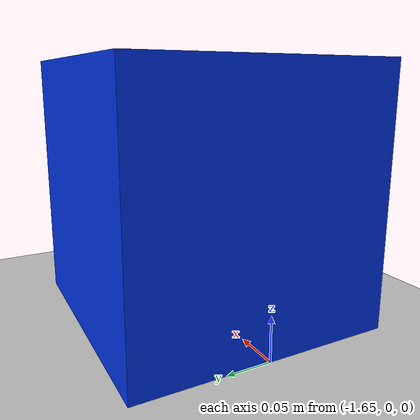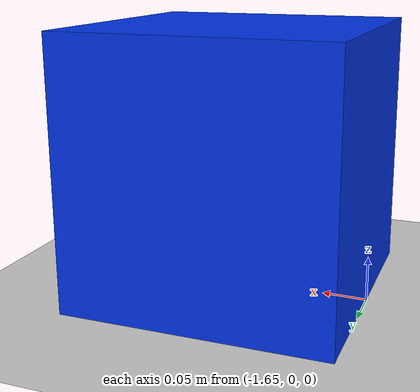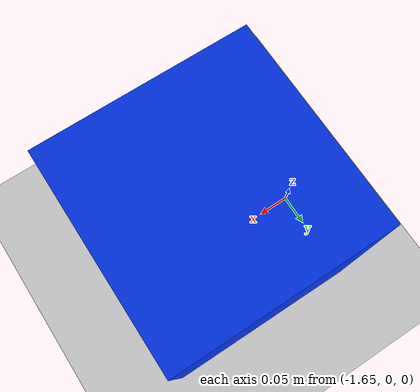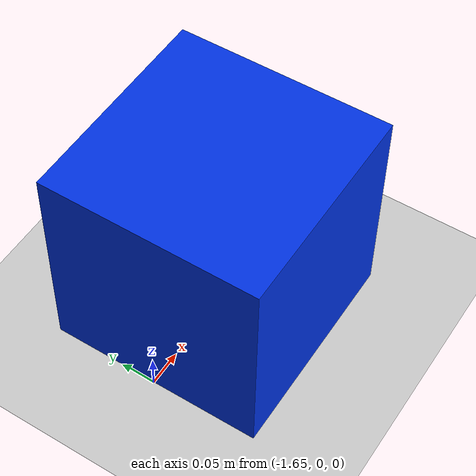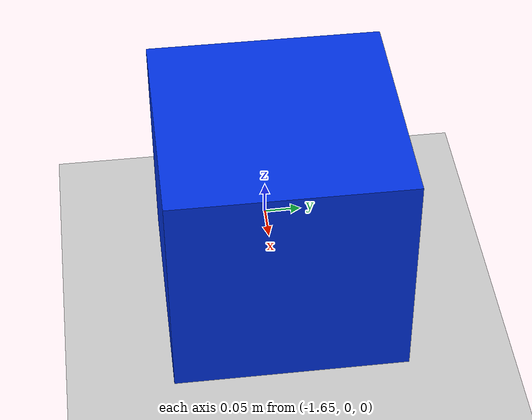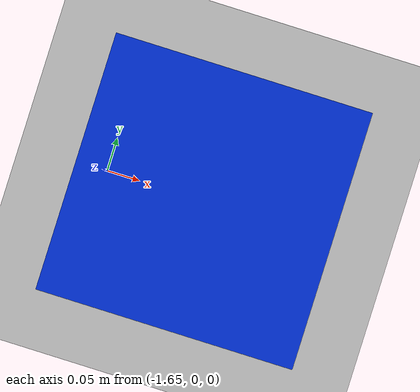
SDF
<?xml version="1.0" ?>
<sdf version="1.6">
  <!-- world name은 warehouse로 둬야 turtlebot4 센서 브릿지 토픽 경로가 맞음 -->
  <world name="warehouse">

    <physics name="1ms" type="ignored">
      <max_step_size>0.001</max_step_size>
      <real_time_factor>1.0</real_time_factor>
    </physics>

    <plugin name='ignition::gazebo::systems::Physics' filename='libignition-gazebo-physics-system.so'/>
    <plugin name='ignition::gazebo::systems::UserCommands' filename='libignition-gazebo-user-commands-system.so'/>
    <plugin name='ignition::gazebo::systems::SceneBroadcaster' filename='libignition-gazebo-scene-broadcaster-system.so'/>

    <light type="directional" name="sun">
      <cast_shadows>true</cast_shadows>
      <pose>0 0 10 0 0 0</pose>
      <diffuse>0.8 0.8 0.8 1</diffuse>
      <specular>0.2 0.2 0.2 1</specular>
      <attenuation>
        <range>1000</range>
        <constant>0.9</constant>
        <linear>0.01</linear>
        <quadratic>0.001</quadratic>
      </attenuation>
      <direction>-0.5 0.1 -0.9</direction>
    </light>

    <model name="ground_plane">
      <static>true</static>
      <link name="link">
        <collision name="collision">
          <geometry><plane><normal>0 0 1</normal><size>100 100</size></plane></geometry>
        </collision>
        <visual name="visual">
          <geometry><plane><normal>0 0 1</normal><size>100 100</size></plane></geometry>
          <material>
            <ambient>0.8 0.8 0.8 1</ambient>
            <diffuse>0.8 0.8 0.8 1</diffuse>
          </material>
        </visual>
      </link>
    </model>

    <!-- 추적 대상: 파란 큐브. VelocityControl로 cmd_vel 제어 (wasd) -->
    <model name="blue_cube">
      <pose>-1.5 0 0.15 0 0 0</pose>
      <link name="link">
        <inertial>
          <mass>1.0</mass>
          <inertia>
            <ixx>0.0045</ixx><iyy>0.0045</iyy><izz>0.0045</izz>
            <ixy>0</ixy><ixz>0</ixz><iyz>0</iyz>
          </inertia>
        </inertial>
        <collision name="collision">
          <geometry><box><size>0.3 0.3 0.3</size></box></geometry>
        </collision>
        <visual name="visual">
          <geometry><box><size>0.3 0.3 0.3</size></box></geometry>
          <material>
            <ambient>0.0 0.2 0.9 1</ambient>
            <diffuse>0.0 0.2 0.9 1</diffuse>
          </material>
        </visual>
      </link>
      <!-- 모델 전체에 속도 명령 (holonomic) -->
      <plugin filename="ignition-gazebo-velocity-control-system"
              name="ignition::gazebo::systems::VelocityControl">
        <topic>/model/blue_cube/cmd_vel</topic>
      </plugin>
    </model>

  </world>
</sdf>
